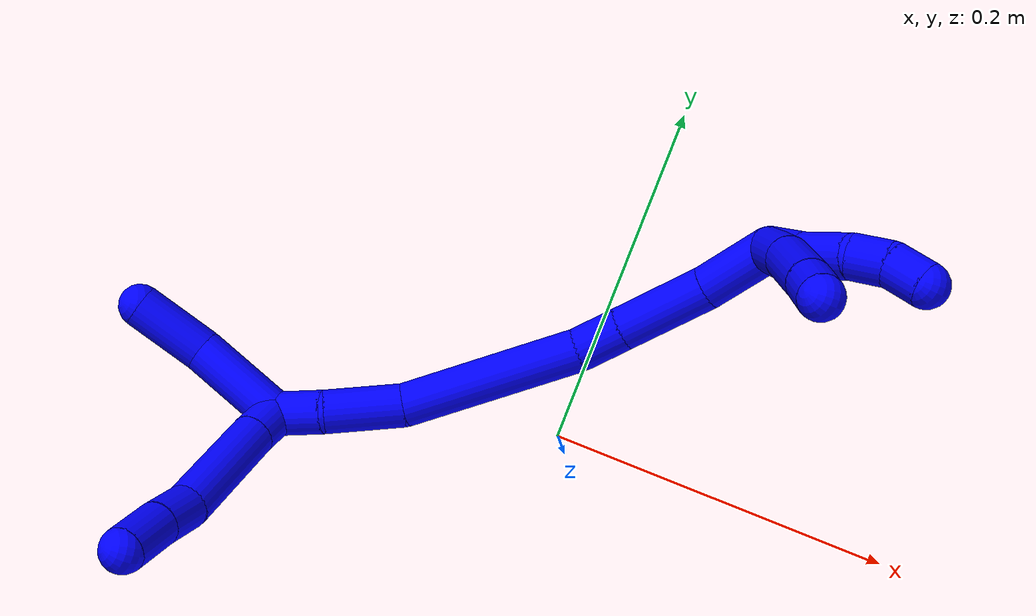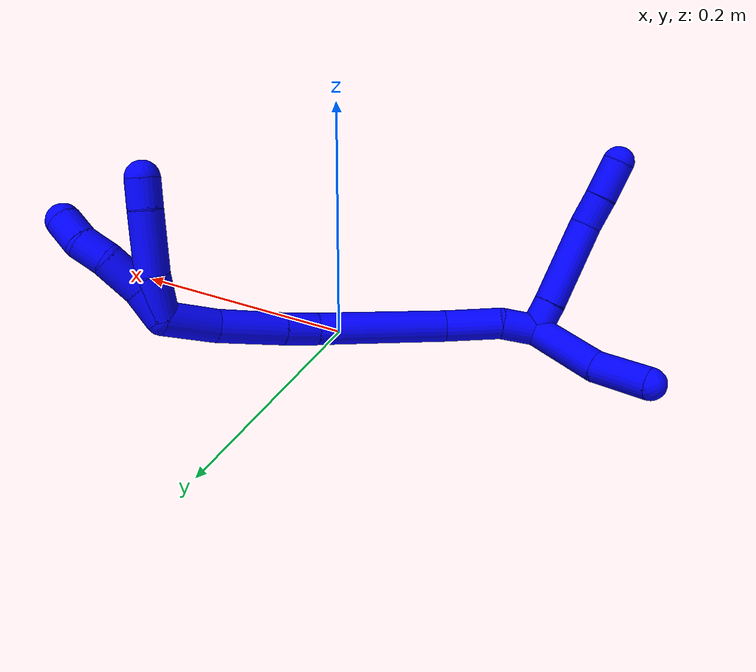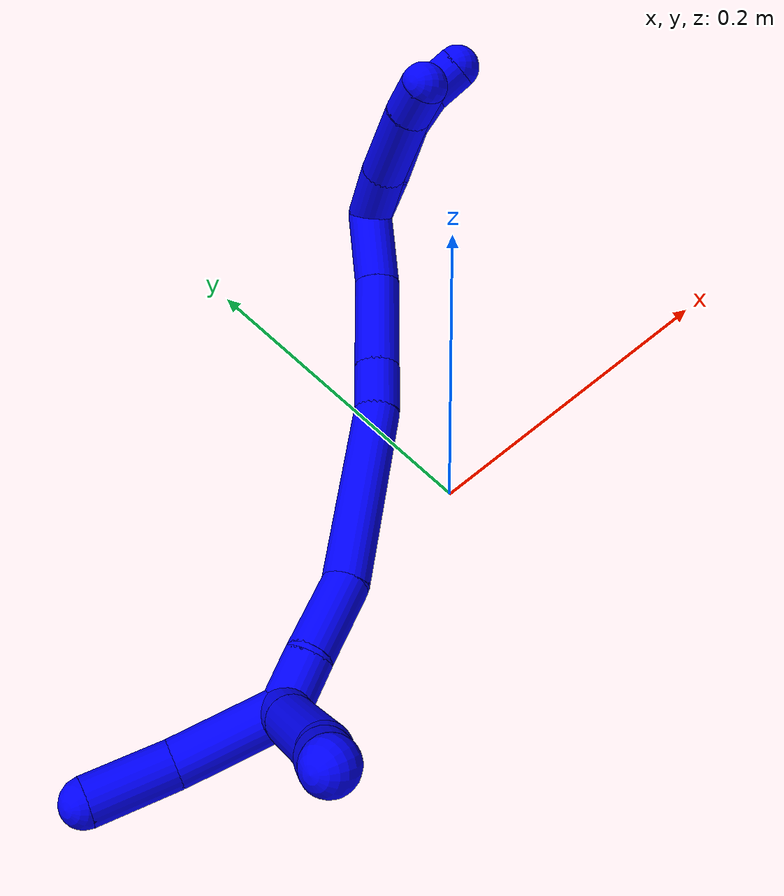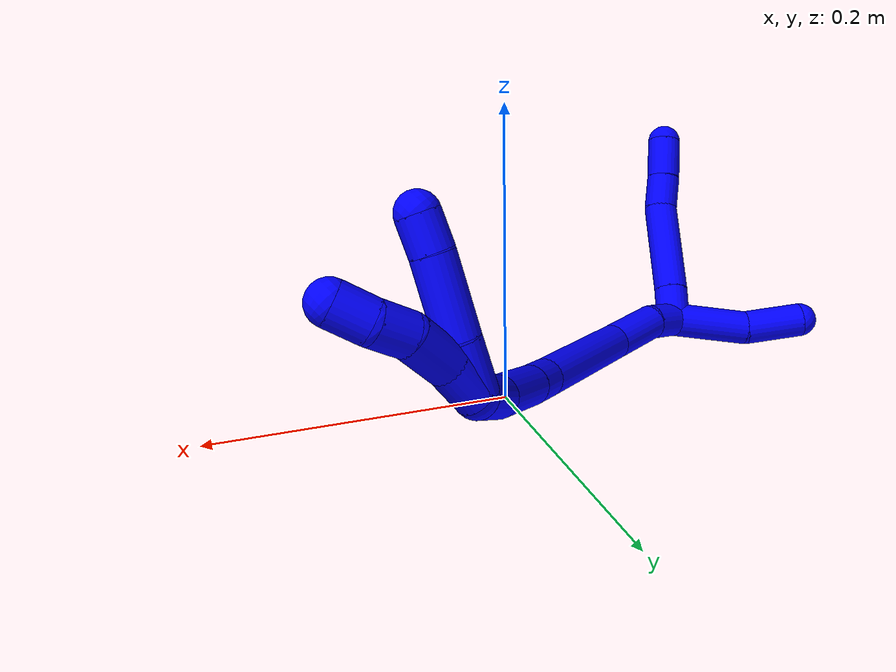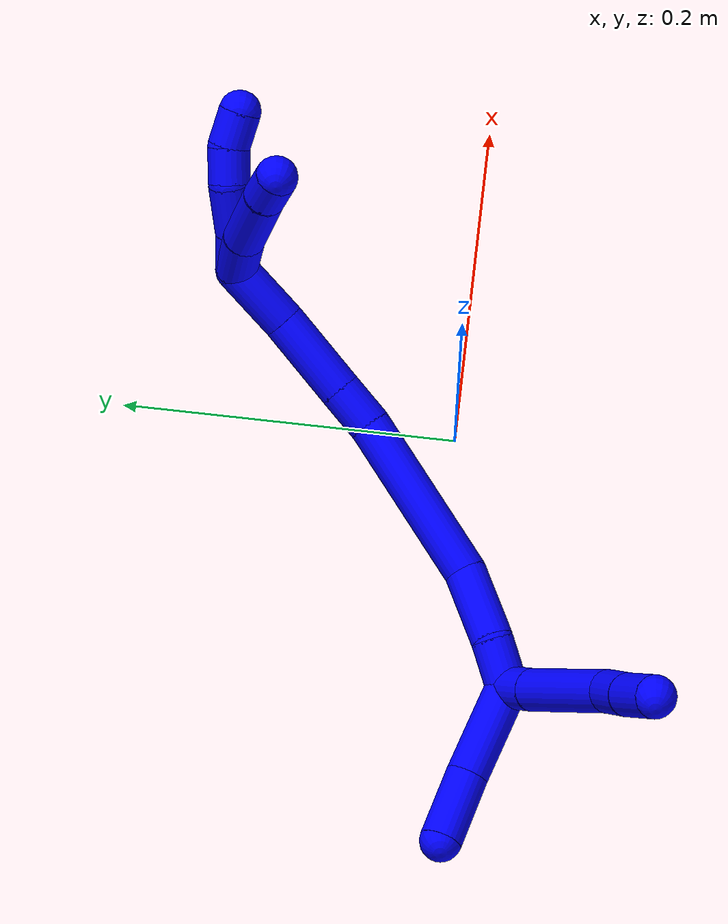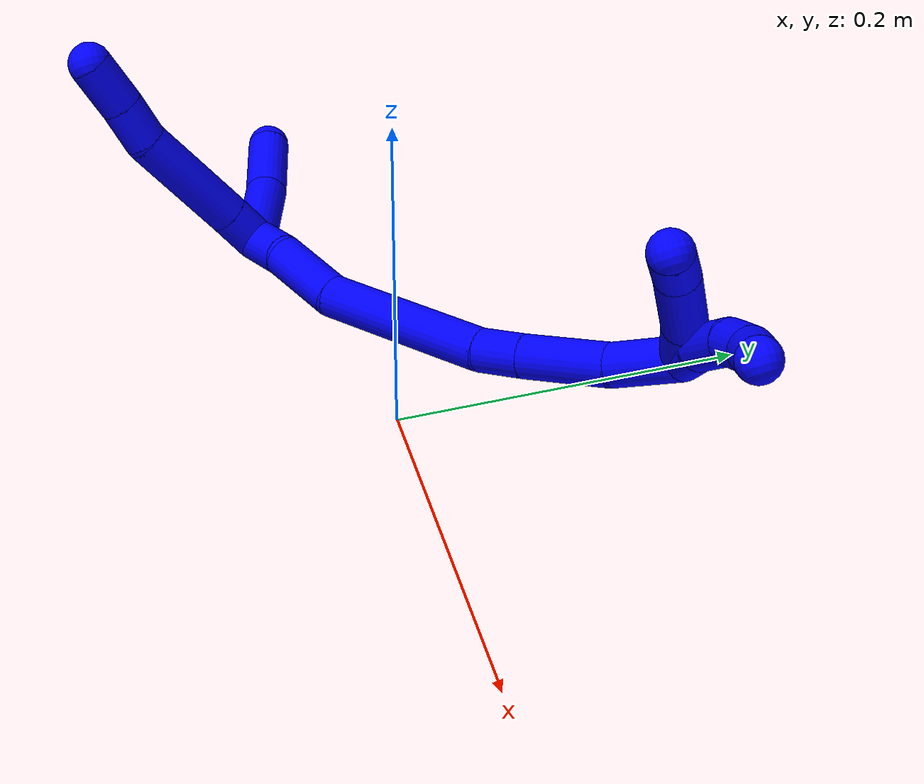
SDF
<sdf version="1.7">
 <world name="default">
  <model name="photoneo_s_sensor">
   <static>1</static>
   <pose>0 0 2 1.57079 1.57079 3.14159</pose>
   <link name="link">
    <inertial><mass>0.1</mass></inertial>
    <sensor name="sensor" type="depth">
     <update_rate>30</update_rate>
     <camera>
      <horizontal_fov>1.22</horizontal_fov>
      <image><width>1920</width><height>1200</height><format>B8G8R8</format></image>
      <clip><near>0.1</near><far>4</far></clip>
      <depth_camera><output>points</output></depth_camera>
     </camera>
     <plugin name="camera_plugin" filename="libgazebo_ros_depth_camera.so">
      <baseline>0.2</baseline>
      <alwaysOn>1</alwaysOn>
      <updateRate>0.0</updateRate>
      <cameraName>camera_ir</cameraName>
      <imageTopicName>/camera/color/image_raw</imageTopicName>
      <cameraInfoTopicName>/camera/color/camera_info</cameraInfoTopicName>
      <depthImageTopicName>/camera/depth/image_raw</depthImageTopicName>
      <depthImageCameraInfoTopicName>/camera/depth/camera_info</depthImageCameraInfoTopicName>
      <pointCloudTopicName>/camera/depth/points</pointCloudTopicName>
      <frameName>fr_optical</frameName>
      <pointCloudCutoff>0.1</pointCloudCutoff>
      <pointCloudCutoffMax>2.0</pointCloudCutoffMax>
      <distortionK1>0</distortionK1>
      <distortionK2>0</distortionK2>
      <distortionK3>0</distortionK3>
      <distortionT1>0</distortionT1>
      <distortionT2>0</distortionT2>
      <CxPrime>0</CxPrime>
      <Cx>0</Cx>
      <Cy>0</Cy>
      <focalLength>0</focalLength>
      <hackBaseline>0</hackBaseline>
     </plugin>
    </sensor>
   </link>
  </model>
  <model name="bin">
   <static>1</static>
   <link name="bottom">
    <collision name="collision-bottom">
     <pose>0 0 -0.01 0 -0 0</pose>
     <geometry><box><size>0.8 0.6 0.02</size></box></geometry>
     <surface>
      <friction><ode><mu>100</mu><mu2>100</mu2></ode></friction>
      <contact><collide_bitmask>65535</collide_bitmask></contact>
     </surface>
    </collision>
   </link>
   <link name="west_wall">
    <collision name="collision-west_wall">
     <pose>-0.41 0 0.1 0 -0 0</pose>
     <geometry><box><size>0.02 0.6 0.2</size></box></geometry>
     <surface>
      <friction><ode><mu>100</mu><mu2>100</mu2></ode></friction>
      <contact><collide_bitmask>65535</collide_bitmask></contact>
     </surface>
    </collision>
   </link>
   <link name="east_wall">
    <collision name="collision-east_wall">
     <pose>0.41 0 0.1 0 -0 0</pose>
     <geometry><box><size>0.02 0.6 0.2</size></box></geometry>
     <surface>
      <friction><ode><mu>100</mu><mu2>100</mu2></ode></friction>
      <contact><collide_bitmask>65535</collide_bitmask></contact>
     </surface>
    </collision>
   </link>
   <link name="south_wall">
    <collision name="collision-south_wall">
     <pose>0 -0.31 0.1 0 -0 0</pose>
     <geometry><box><size>0.8 0.02 0.2</size></box></geometry>
     <surface>
      <friction><ode><mu>100</mu><mu2>100</mu2></ode></friction>
      <contact><collide_bitmask>65535</collide_bitmask></contact>
     </surface>
    </collision>
   </link>
   <link name="north_wall">
    <collision name="collision-north_wall">
     <pose>0 0.31 0.1 0 -0 0</pose>
     <geometry><box><size>0.8 0.02 0.2</size></box></geometry>
     <surface>
      <friction><ode><mu>100</mu><mu2>100</mu2></ode></friction>
      <contact><collide_bitmask>65535</collide_bitmask></contact>
     </surface>
    </collision>
   </link>
  </model>
  <model name="1">
   <static>0</static>
   <link name="1">
    <collision name="collision-cylinder-e_1_2_8">
     <pose>0.007135 -0.005083 0.008221 0.553734 0.635879 0.186497</pose>
     <geometry><cylinder><radius>0.0125</radius><length>0.024027</length></cylinder></geometry>
     <surface>
      <friction><ode><mu>1.16</mu><mu2>1.16</mu2><slip1>0</slip1><slip2>0</slip2></ode></friction>
      <contact><ode><kp>1e+06</kp><kd>1</kd><max_vel>0</max_vel><min_depth>0.001</min_depth></ode></contact>
     </surface>
    </collision>
    <visual name="visual-cylinder-e_1_2_8">
     <pose>0.007135 -0.005083 0.008221 0.553734 0.635879 0.186497</pose>
     <geometry><cylinder><radius>0.0125</radius><length>0.024027</length></cylinder></geometry>
     <material><ambient>0 0 1 1</ambient></material>
    </visual>
    <collision name="collision-cylinder-e_2_8_9">
     <pose>0.036348 -0.024799 0.038936 0.576765 0.688472 0.211909</pose>
     <geometry><cylinder><radius>0.0125</radius><length>0.069501</length></cylinder></geometry>
     <surface>
      <friction><ode><mu>1.16</mu><mu2>1.16</mu2><slip1>0</slip1><slip2>0</slip2></ode></friction>
      <contact><ode><kp>1e+06</kp><kd>1</kd><max_vel>0</max_vel><min_depth>0.001</min_depth></ode></contact>
     </surface>
    </collision>
    <visual name="visual-cylinder-e_2_8_9">
     <pose>0.036348 -0.024799 0.038936 0.576765 0.688472 0.211909</pose>
     <geometry><cylinder><radius>0.0125</radius><length>0.069501</length></cylinder></geometry>
     <material><ambient>0 0 1 1</ambient></material>
    </visual>
    <collision name="collision-cylinder-e_3_9_10">
     <pose>0.065924 -0.042315 0.071468 0.279586 0.622574 0.090485</pose>
     <geometry><cylinder><radius>0.0125</radius><length>0.025711</length></cylinder></geometry>
     <surface>
      <friction><ode><mu>1.16</mu><mu2>1.16</mu2><slip1>0</slip1><slip2>0</slip2></ode></friction>
      <contact><ode><kp>1e+06</kp><kd>1</kd><max_vel>0</max_vel><min_depth>0.001</min_depth></ode></contact>
     </surface>
    </collision>
    <visual name="visual-cylinder-e_3_9_10">
     <pose>0.065924 -0.042315 0.071468 0.279586 0.622574 0.090485</pose>
     <geometry><cylinder><radius>0.0125</radius><length>0.025711</length></cylinder></geometry>
     <material><ambient>0 0 1 1</ambient></material>
    </visual>
    <collision name="collision-cylinder-e_4_10_6">
     <pose>0.08294 -0.049301 0.092868 0.346631 0.667394 0.121232</pose>
     <geometry><cylinder><radius>0.0125</radius><length>0.030761</length></cylinder></geometry>
     <surface>
      <friction><ode><mu>1.16</mu><mu2>1.16</mu2><slip1>0</slip1><slip2>0</slip2></ode></friction>
      <contact><ode><kp>1e+06</kp><kd>1</kd><max_vel>0</max_vel><min_depth>0.001</min_depth></ode></contact>
     </surface>
    </collision>
    <visual name="visual-cylinder-e_4_10_6">
     <pose>0.08294 -0.049301 0.092868 0.346631 0.667394 0.121232</pose>
     <geometry><cylinder><radius>0.0125</radius><length>0.030761</length></cylinder></geometry>
     <material><ambient>0 0 1 1</ambient></material>
    </visual>
    <collision name="collision-cylinder-e_1_2_11">
     <pose>-0.021443 0.004589 0.017814 -0.252116 -0.861741 0.116378</pose>
     <geometry><cylinder><radius>0.0125</radius><length>0.056505</length></cylinder></geometry>
     <surface>
      <friction><ode><mu>1.16</mu><mu2>1.16</mu2><slip1>0</slip1><slip2>0</slip2></ode></friction>
      <contact><ode><kp>1e+06</kp><kd>1</kd><max_vel>0</max_vel><min_depth>0.001</min_depth></ode></contact>
     </surface>
    </collision>
    <visual name="visual-cylinder-e_1_2_11">
     <pose>-0.021443 0.004589 0.017814 -0.252116 -0.861741 0.116378</pose>
     <geometry><cylinder><radius>0.0125</radius><length>0.056505</length></cylinder></geometry>
     <material><ambient>0 0 1 1</ambient></material>
    </visual>
    <collision name="collision-cylinder-e_2_11_5">
     <pose>-0.055243 0.012792 0.053156 -0.203359 -0.604288 0.063582</pose>
     <geometry><cylinder><radius>0.0125</radius><length>0.043495</length></cylinder></geometry>
     <surface>
      <friction><ode><mu>1.16</mu><mu2>1.16</mu2><slip1>0</slip1><slip2>0</slip2></ode></friction>
      <contact><ode><kp>1e+06</kp><kd>1</kd><max_vel>0</max_vel><min_depth>0.001</min_depth></ode></contact>
     </surface>
    </collision>
    <visual name="visual-cylinder-e_2_11_5">
     <pose>-0.055243 0.012792 0.053156 -0.203359 -0.604288 0.063582</pose>
     <geometry><cylinder><radius>0.0125</radius><length>0.043495</length></cylinder></geometry>
     <material><ambient>0 0 1 1</ambient></material>
    </visual>
    <collision name="collision-cylinder-e_1_2_12">
     <pose>0.008362 0.007542 -0.008816 -2.43394 0.624501 -1.43647</pose>
     <geometry><cylinder><radius>0.0125</radius><length>0.028603</length></cylinder></geometry>
     <surface>
      <friction><ode><mu>1.16</mu><mu2>1.16</mu2><slip1>0</slip1><slip2>0</slip2></ode></friction>
      <contact><ode><kp>1e+06</kp><kd>1</kd><max_vel>0</max_vel><min_depth>0.001</min_depth></ode></contact>
     </surface>
    </collision>
    <visual name="visual-cylinder-e_1_2_12">
     <pose>0.008362 0.007542 -0.008816 -2.43394 0.624501 -1.43647</pose>
     <geometry><cylinder><radius>0.0125</radius><length>0.028603</length></cylinder></geometry>
     <material><ambient>0 0 1 1</ambient></material>
    </visual>
    <collision name="collision-cylinder-e_2_12_13">
     <pose>0.02546 0.026626 -0.035086 -2.5573 0.395491 -1.17538</pose>
     <geometry><cylinder><radius>0.0125</radius><length>0.04535</length></cylinder></geometry>
     <surface>
      <friction><ode><mu>1.16</mu><mu2>1.16</mu2><slip1>0</slip1><slip2>0</slip2></ode></friction>
      <contact><ode><kp>1e+06</kp><kd>1</kd><max_vel>0</max_vel><min_depth>0.001</min_depth></ode></contact>
     </surface>
    </collision>
    <visual name="visual-cylinder-e_2_12_13">
     <pose>0.02546 0.026626 -0.035086 -2.5573 0.395491 -1.17538</pose>
     <geometry><cylinder><radius>0.0125</radius><length>0.04535</length></cylinder></geometry>
     <material><ambient>0 0 1 1</ambient></material>
    </visual>
    <collision name="collision-cylinder-e_3_13_14">
     <pose>0.054542 0.075428 -0.082638 -2.25027 0.401686 -0.805726</pose>
     <geometry><cylinder><radius>0.0125</radius><length>0.104081</length></cylinder></geometry>
     <surface>
      <friction><ode><mu>1.16</mu><mu2>1.16</mu2><slip1>0</slip1><slip2>0</slip2></ode></friction>
      <contact><ode><kp>1e+06</kp><kd>1</kd><max_vel>0</max_vel><min_depth>0.001</min_depth></ode></contact>
     </surface>
    </collision>
    <visual name="visual-cylinder-e_3_13_14">
     <pose>0.054542 0.075428 -0.082638 -2.25027 0.401686 -0.805726</pose>
     <geometry><cylinder><radius>0.0125</radius><length>0.104081</length></cylinder></geometry>
     <material><ambient>0 0 1 1</ambient></material>
    </visual>
    <collision name="collision-cylinder-e_4_14_15">
     <pose>0.080158 0.123954 -0.118562 -2.048 0.393789 -0.633365</pose>
     <geometry><cylinder><radius>0.0125</radius><length>0.027468</length></cylinder></geometry>
     <surface>
      <friction><ode><mu>1.16</mu><mu2>1.16</mu2><slip1>0</slip1><slip2>0</slip2></ode></friction>
      <contact><ode><kp>1e+06</kp><kd>1</kd><max_vel>0</max_vel><min_depth>0.001</min_depth></ode></contact>
     </surface>
    </collision>
    <visual name="visual-cylinder-e_4_14_15">
     <pose>0.080158 0.123954 -0.118562 -2.048 0.393789 -0.633365</pose>
     <geometry><cylinder><radius>0.0125</radius><length>0.027468</length></cylinder></geometry>
     <material><ambient>0 0 1 1</ambient></material>
    </visual>
    <collision name="collision-cylinder-e_5_15_16">
     <pose>0.096346 0.156903 -0.134661 -2.01329 0.427052 -0.660283</pose>
     <geometry><cylinder><radius>0.0125</radius><length>0.052724</length></cylinder></geometry>
     <surface>
      <friction><ode><mu>1.16</mu><mu2>1.16</mu2><slip1>0</slip1><slip2>0</slip2></ode></friction>
      <contact><ode><kp>1e+06</kp><kd>1</kd><max_vel>0</max_vel><min_depth>0.001</min_depth></ode></contact>
     </surface>
    </collision>
    <visual name="visual-cylinder-e_5_15_16">
     <pose>0.096346 0.156903 -0.134661 -2.01329 0.427052 -0.660283</pose>
     <geometry><cylinder><radius>0.0125</radius><length>0.052724</length></cylinder></geometry>
     <material><ambient>0 0 1 1</ambient></material>
    </visual>
    <collision name="collision-cylinder-e_6_16_1">
     <pose>0.116676 0.196656 -0.14954 -1.82028 0.4674 -0.594469</pose>
     <geometry><cylinder><radius>0.0125</radius><length>0.041775</length></cylinder></geometry>
     <surface>
      <friction><ode><mu>1.16</mu><mu2>1.16</mu2><slip1>0</slip1><slip2>0</slip2></ode></friction>
      <contact><ode><kp>1e+06</kp><kd>1</kd><max_vel>0</max_vel><min_depth>0.001</min_depth></ode></contact>
     </surface>
    </collision>
    <visual name="visual-cylinder-e_6_16_1">
     <pose>0.116676 0.196656 -0.14954 -1.82028 0.4674 -0.594469</pose>
     <geometry><cylinder><radius>0.0125</radius><length>0.041775</length></cylinder></geometry>
     <material><ambient>0 0 1 1</ambient></material>
    </visual>
    <collision name="collision-cylinder-e_1_1_17">
     <pose>0.138339 0.218651 -0.153961 -1.52425 1.26049 -1.21649</pose>
     <geometry><cylinder><radius>0.0125</radius><length>0.025732</length></cylinder></geometry>
     <surface>
      <friction><ode><mu>1.16</mu><mu2>1.16</mu2><slip1>0</slip1><slip2>0</slip2></ode></friction>
      <contact><ode><kp>1e+06</kp><kd>1</kd><max_vel>0</max_vel><min_depth>0.001</min_depth></ode></contact>
     </surface>
    </collision>
    <visual name="visual-cylinder-e_1_1_17">
     <pose>0.138339 0.218651 -0.153961 -1.52425 1.26049 -1.21649</pose>
     <geometry><cylinder><radius>0.0125</radius><length>0.025732</length></cylinder></geometry>
     <material><ambient>0 0 1 1</ambient></material>
    </visual>
    <collision name="collision-cylinder-e_2_17_18">
     <pose>0.164269 0.22928 -0.155704 -1.85044 1.09918 -1.36547</pose>
     <geometry><cylinder><radius>0.0125</radius><length>0.030709</length></cylinder></geometry>
     <surface>
      <friction><ode><mu>1.16</mu><mu2>1.16</mu2><slip1>0</slip1><slip2>0</slip2></ode></friction>
      <contact><ode><kp>1e+06</kp><kd>1</kd><max_vel>0</max_vel><min_depth>0.001</min_depth></ode></contact>
     </surface>
    </collision>
    <visual name="visual-cylinder-e_2_17_18">
     <pose>0.164269 0.22928 -0.155704 -1.85044 1.09918 -1.36547</pose>
     <geometry><cylinder><radius>0.0125</radius><length>0.030709</length></cylinder></geometry>
     <material><ambient>0 0 1 1</ambient></material>
    </visual>
    <collision name="collision-cylinder-e_3_18_19">
     <pose>0.187248 0.23943 -0.161995 -2.47355 1.03189 -2.04345</pose>
     <geometry><cylinder><radius>0.0125</radius><length>0.021674</length></cylinder></geometry>
     <surface>
      <friction><ode><mu>1.16</mu><mu2>1.16</mu2><slip1>0</slip1><slip2>0</slip2></ode></friction>
      <contact><ode><kp>1e+06</kp><kd>1</kd><max_vel>0</max_vel><min_depth>0.001</min_depth></ode></contact>
     </surface>
    </collision>
    <visual name="visual-cylinder-e_3_18_19">
     <pose>0.187248 0.23943 -0.161995 -2.47355 1.03189 -2.04345</pose>
     <geometry><cylinder><radius>0.0125</radius><length>0.021674</length></cylinder></geometry>
     <material><ambient>0 0 1 1</ambient></material>
    </visual>
    <collision name="collision-cylinder-e_4_19_4">
     <pose>0.206811 0.242945 -0.170159 -3.1233 1.2163 -3.11531</pose>
     <geometry><cylinder><radius>0.0125</radius><length>0.021884</length></cylinder></geometry>
     <surface>
      <friction><ode><mu>1.16</mu><mu2>1.16</mu2><slip1>0</slip1><slip2>0</slip2></ode></friction>
      <contact><ode><kp>1e+06</kp><kd>1</kd><max_vel>0</max_vel><min_depth>0.001</min_depth></ode></contact>
     </surface>
    </collision>
    <visual name="visual-cylinder-e_4_19_4">
     <pose>0.206811 0.242945 -0.170159 -3.1233 1.2163 -3.11531</pose>
     <geometry><cylinder><radius>0.0125</radius><length>0.021884</length></cylinder></geometry>
     <material><ambient>0 0 1 1</ambient></material>
    </visual>
    <collision name="collision-cylinder-e_1_1_20">
     <pose>0.140732 0.21675 -0.147534 -0.297138 1.1298 -0.189158</pose>
     <geometry><cylinder><radius>0.0125</radius><length>0.032388</length></cylinder></geometry>
     <surface>
      <friction><ode><mu>1.16</mu><mu2>1.16</mu2><slip1>0</slip1><slip2>0</slip2></ode></friction>
      <contact><ode><kp>1e+06</kp><kd>1</kd><max_vel>0</max_vel><min_depth>0.001</min_depth></ode></contact>
     </surface>
    </collision>
    <visual name="visual-cylinder-e_1_1_20">
     <pose>0.140732 0.21675 -0.147534 -0.297138 1.1298 -0.189158</pose>
     <geometry><cylinder><radius>0.0125</radius><length>0.032388</length></cylinder></geometry>
     <material><ambient>0 0 1 1</ambient></material>
    </visual>
    <collision name="collision-cylinder-e_2_20_21">
     <pose>0.176013 0.218911 -0.130691 -0.013401 1.11038 -0.008312</pose>
     <geometry><cylinder><radius>0.0125</radius><length>0.046072</length></cylinder></geometry>
     <surface>
      <friction><ode><mu>1.16</mu><mu2>1.16</mu2><slip1>0</slip1><slip2>0</slip2></ode></friction>
      <contact><ode><kp>1e+06</kp><kd>1</kd><max_vel>0</max_vel><min_depth>0.001</min_depth></ode></contact>
     </surface>
    </collision>
    <visual name="visual-cylinder-e_2_20_21">
     <pose>0.176013 0.218911 -0.130691 -0.013401 1.11038 -0.008312</pose>
     <geometry><cylinder><radius>0.0125</radius><length>0.046072</length></cylinder></geometry>
     <material><ambient>0 0 1 1</ambient></material>
    </visual>
    <collision name="collision-cylinder-e_3_21_3">
     <pose>0.206527 0.218397 -0.116211 0.152204 1.16058 0.099892</pose>
     <geometry><cylinder><radius>0.0125</radius><length>0.02154</length></cylinder></geometry>
     <surface>
      <friction><ode><mu>1.16</mu><mu2>1.16</mu2><slip1>0</slip1><slip2>0</slip2></ode></friction>
      <contact><ode><kp>1e+06</kp><kd>1</kd><max_vel>0</max_vel><min_depth>0.001</min_depth></ode></contact>
     </surface>
    </collision>
    <visual name="visual-cylinder-e_3_21_3">
     <pose>0.206527 0.218397 -0.116211 0.152204 1.16058 0.099892</pose>
     <geometry><cylinder><radius>0.0125</radius><length>0.02154</length></cylinder></geometry>
     <material><ambient>0 0 1 1</ambient></material>
    </visual>
    <collision name="collision-sphere-3">
     <pose>0.216404 0.217746 -0.111965 0 -0 0</pose>
     <geometry><sphere><radius>0.0125</radius></sphere></geometry>
     <surface>
      <friction><ode><mu>1.16</mu><mu2>1.16</mu2><slip1>0</slip1><slip2>0</slip2></ode></friction>
      <contact><ode><kp>1e+06</kp><kd>1</kd><max_vel>0</max_vel><min_depth>0.001</min_depth></ode></contact>
     </surface>
    </collision>
    <visual name="visual-sphere-3">
     <pose>0.216404 0.217746 -0.111965 0 -0 0</pose>
     <geometry><sphere><radius>0.0125</radius></sphere></geometry>
     <material><ambient>0 0 1 1</ambient></material>
    </visual>
    <collision name="collision-sphere-21">
     <pose>0.196651 0.219048 -0.120456 0 -0 0</pose>
     <geometry><sphere><radius>0.0125</radius></sphere></geometry>
     <surface>
      <friction><ode><mu>1.16</mu><mu2>1.16</mu2><slip1>0</slip1><slip2>0</slip2></ode></friction>
      <contact><ode><kp>1e+06</kp><kd>1</kd><max_vel>0</max_vel><min_depth>0.001</min_depth></ode></contact>
     </surface>
    </collision>
    <visual name="visual-sphere-21">
     <pose>0.196651 0.219048 -0.120456 0 -0 0</pose>
     <geometry><sphere><radius>0.0125</radius></sphere></geometry>
     <material><ambient>0 0 1 1</ambient></material>
    </visual>
    <collision name="collision-sphere-20">
     <pose>0.155376 0.218774 -0.140925 0 -0 0</pose>
     <geometry><sphere><radius>0.0125</radius></sphere></geometry>
     <surface>
      <friction><ode><mu>1.16</mu><mu2>1.16</mu2><slip1>0</slip1><slip2>0</slip2></ode></friction>
      <contact><ode><kp>1e+06</kp><kd>1</kd><max_vel>0</max_vel><min_depth>0.001</min_depth></ode></contact>
     </surface>
    </collision>
    <visual name="visual-sphere-20">
     <pose>0.155376 0.218774 -0.140925 0 -0 0</pose>
     <geometry><sphere><radius>0.0125</radius></sphere></geometry>
     <material><ambient>0 0 1 1</ambient></material>
    </visual>
    <collision name="collision-sphere-4">
     <pose>0.217073 0.243014 -0.173956 0 -0 0</pose>
     <geometry><sphere><radius>0.0125</radius></sphere></geometry>
     <surface>
      <friction><ode><mu>1.16</mu><mu2>1.16</mu2><slip1>0</slip1><slip2>0</slip2></ode></friction>
      <contact><ode><kp>1e+06</kp><kd>1</kd><max_vel>0</max_vel><min_depth>0.001</min_depth></ode></contact>
     </surface>
    </collision>
    <visual name="visual-sphere-4">
     <pose>0.217073 0.243014 -0.173956 0 -0 0</pose>
     <geometry><sphere><radius>0.0125</radius></sphere></geometry>
     <material><ambient>0 0 1 1</ambient></material>
    </visual>
    <collision name="collision-sphere-11">
     <pose>-0.042886 0.009178 0.035629 0 -0 0</pose>
     <geometry><sphere><radius>0.0125</radius></sphere></geometry>
     <surface>
      <friction><ode><mu>1.16</mu><mu2>1.16</mu2><slip1>0</slip1><slip2>0</slip2></ode></friction>
      <contact><ode><kp>1e+06</kp><kd>1</kd><max_vel>0</max_vel><min_depth>0.001</min_depth></ode></contact>
     </surface>
    </collision>
    <visual name="visual-sphere-11">
     <pose>-0.042886 0.009178 0.035629 0 -0 0</pose>
     <geometry><sphere><radius>0.0125</radius></sphere></geometry>
     <material><ambient>0 0 1 1</ambient></material>
    </visual>
    <collision name="collision-sphere-6">
     <pose>0.092459 -0.053405 0.10423 0 -0 0</pose>
     <geometry><sphere><radius>0.0125</radius></sphere></geometry>
     <surface>
      <friction><ode><mu>1.16</mu><mu2>1.16</mu2><slip1>0</slip1><slip2>0</slip2></ode></friction>
      <contact><ode><kp>1e+06</kp><kd>1</kd><max_vel>0</max_vel><min_depth>0.001</min_depth></ode></contact>
     </surface>
    </collision>
    <visual name="visual-sphere-6">
     <pose>0.092459 -0.053405 0.10423 0 -0 0</pose>
     <geometry><sphere><radius>0.0125</radius></sphere></geometry>
     <material><ambient>0 0 1 1</ambient></material>
    </visual>
    <collision name="collision-sphere-10">
     <pose>0.07342 -0.045197 0.081506 0 -0 0</pose>
     <geometry><sphere><radius>0.0125</radius></sphere></geometry>
     <surface>
      <friction><ode><mu>1.16</mu><mu2>1.16</mu2><slip1>0</slip1><slip2>0</slip2></ode></friction>
      <contact><ode><kp>1e+06</kp><kd>1</kd><max_vel>0</max_vel><min_depth>0.001</min_depth></ode></contact>
     </surface>
    </collision>
    <visual name="visual-sphere-10">
     <pose>0.07342 -0.045197 0.081506 0 -0 0</pose>
     <geometry><sphere><radius>0.0125</radius></sphere></geometry>
     <material><ambient>0 0 1 1</ambient></material>
    </visual>
    <collision name="collision-sphere-9">
     <pose>0.058428 -0.039433 0.06143 0 -0 0</pose>
     <geometry><sphere><radius>0.0125</radius></sphere></geometry>
     <surface>
      <friction><ode><mu>1.16</mu><mu2>1.16</mu2><slip1>0</slip1><slip2>0</slip2></ode></friction>
      <contact><ode><kp>1e+06</kp><kd>1</kd><max_vel>0</max_vel><min_depth>0.001</min_depth></ode></contact>
     </surface>
    </collision>
    <visual name="visual-sphere-9">
     <pose>0.058428 -0.039433 0.06143 0 -0 0</pose>
     <geometry><sphere><radius>0.0125</radius></sphere></geometry>
     <material><ambient>0 0 1 1</ambient></material>
    </visual>
    <collision name="collision-sphere-2">
     <geometry><sphere><radius>0.0125</radius></sphere></geometry>
     <surface>
      <friction><ode><mu>1.16</mu><mu2>1.16</mu2><slip1>0</slip1><slip2>0</slip2></ode></friction>
      <contact><ode><kp>1e+06</kp><kd>1</kd><max_vel>0</max_vel><min_depth>0.001</min_depth></ode></contact>
     </surface>
    </collision>
    <visual name="visual-sphere-2">
     <geometry><sphere><radius>0.0125</radius></sphere></geometry>
     <material><ambient>0 0 1 1</ambient></material>
    </visual>
    <collision name="collision-sphere-19">
     <pose>0.19655 0.242875 -0.166361 0 -0 0</pose>
     <geometry><sphere><radius>0.0125</radius></sphere></geometry>
     <surface>
      <friction><ode><mu>1.16</mu><mu2>1.16</mu2><slip1>0</slip1><slip2>0</slip2></ode></friction>
      <contact><ode><kp>1e+06</kp><kd>1</kd><max_vel>0</max_vel><min_depth>0.001</min_depth></ode></contact>
     </surface>
    </collision>
    <visual name="visual-sphere-19">
     <pose>0.19655 0.242875 -0.166361 0 -0 0</pose>
     <geometry><sphere><radius>0.0125</radius></sphere></geometry>
     <material><ambient>0 0 1 1</ambient></material>
    </visual>
    <collision name="collision-sphere-8">
     <pose>0.014269 -0.010165 0.016442 0 -0 0</pose>
     <geometry><sphere><radius>0.0125</radius></sphere></geometry>
     <surface>
      <friction><ode><mu>1.16</mu><mu2>1.16</mu2><slip1>0</slip1><slip2>0</slip2></ode></friction>
      <contact><ode><kp>1e+06</kp><kd>1</kd><max_vel>0</max_vel><min_depth>0.001</min_depth></ode></contact>
     </surface>
    </collision>
    <visual name="visual-sphere-8">
     <pose>0.014269 -0.010165 0.016442 0 -0 0</pose>
     <geometry><sphere><radius>0.0125</radius></sphere></geometry>
     <material><ambient>0 0 1 1</ambient></material>
    </visual>
    <collision name="collision-sphere-5">
     <pose>-0.067599 0.016406 0.070683 0 -0 0</pose>
     <geometry><sphere><radius>0.0125</radius></sphere></geometry>
     <surface>
      <friction><ode><mu>1.16</mu><mu2>1.16</mu2><slip1>0</slip1><slip2>0</slip2></ode></friction>
      <contact><ode><kp>1e+06</kp><kd>1</kd><max_vel>0</max_vel><min_depth>0.001</min_depth></ode></contact>
     </surface>
    </collision>
    <visual name="visual-sphere-5">
     <pose>-0.067599 0.016406 0.070683 0 -0 0</pose>
     <geometry><sphere><radius>0.0125</radius></sphere></geometry>
     <material><ambient>0 0 1 1</ambient></material>
    </visual>
    <collision name="collision-sphere-12">
     <pose>0.016724 0.015084 -0.017633 0 -0 0</pose>
     <geometry><sphere><radius>0.0125</radius></sphere></geometry>
     <surface>
      <friction><ode><mu>1.16</mu><mu2>1.16</mu2><slip1>0</slip1><slip2>0</slip2></ode></friction>
      <contact><ode><kp>1e+06</kp><kd>1</kd><max_vel>0</max_vel><min_depth>0.001</min_depth></ode></contact>
     </surface>
    </collision>
    <visual name="visual-sphere-12">
     <pose>0.016724 0.015084 -0.017633 0 -0 0</pose>
     <geometry><sphere><radius>0.0125</radius></sphere></geometry>
     <material><ambient>0 0 1 1</ambient></material>
    </visual>
    <collision name="collision-sphere-13">
     <pose>0.034196 0.038168 -0.052539 0 -0 0</pose>
     <geometry><sphere><radius>0.0125</radius></sphere></geometry>
     <surface>
      <friction><ode><mu>1.16</mu><mu2>1.16</mu2><slip1>0</slip1><slip2>0</slip2></ode></friction>
      <contact><ode><kp>1e+06</kp><kd>1</kd><max_vel>0</max_vel><min_depth>0.001</min_depth></ode></contact>
     </surface>
    </collision>
    <visual name="visual-sphere-13">
     <pose>0.034196 0.038168 -0.052539 0 -0 0</pose>
     <geometry><sphere><radius>0.0125</radius></sphere></geometry>
     <material><ambient>0 0 1 1</ambient></material>
    </visual>
    <collision name="collision-sphere-14">
     <pose>0.074888 0.112688 -0.112737 0 -0 0</pose>
     <geometry><sphere><radius>0.0125</radius></sphere></geometry>
     <surface>
      <friction><ode><mu>1.16</mu><mu2>1.16</mu2><slip1>0</slip1><slip2>0</slip2></ode></friction>
      <contact><ode><kp>1e+06</kp><kd>1</kd><max_vel>0</max_vel><min_depth>0.001</min_depth></ode></contact>
     </surface>
    </collision>
    <visual name="visual-sphere-14">
     <pose>0.074888 0.112688 -0.112737 0 -0 0</pose>
     <geometry><sphere><radius>0.0125</radius></sphere></geometry>
     <material><ambient>0 0 1 1</ambient></material>
    </visual>
    <collision name="collision-sphere-15">
     <pose>0.085427 0.13522 -0.124387 0 -0 0</pose>
     <geometry><sphere><radius>0.0125</radius></sphere></geometry>
     <surface>
      <friction><ode><mu>1.16</mu><mu2>1.16</mu2><slip1>0</slip1><slip2>0</slip2></ode></friction>
      <contact><ode><kp>1e+06</kp><kd>1</kd><max_vel>0</max_vel><min_depth>0.001</min_depth></ode></contact>
     </surface>
    </collision>
    <visual name="visual-sphere-15">
     <pose>0.085427 0.13522 -0.124387 0 -0 0</pose>
     <geometry><sphere><radius>0.0125</radius></sphere></geometry>
     <material><ambient>0 0 1 1</ambient></material>
    </visual>
    <collision name="collision-sphere-16">
     <pose>0.107265 0.178587 -0.144936 0 -0 0</pose>
     <geometry><sphere><radius>0.0125</radius></sphere></geometry>
     <surface>
      <friction><ode><mu>1.16</mu><mu2>1.16</mu2><slip1>0</slip1><slip2>0</slip2></ode></friction>
      <contact><ode><kp>1e+06</kp><kd>1</kd><max_vel>0</max_vel><min_depth>0.001</min_depth></ode></contact>
     </surface>
    </collision>
    <visual name="visual-sphere-16">
     <pose>0.107265 0.178587 -0.144936 0 -0 0</pose>
     <geometry><sphere><radius>0.0125</radius></sphere></geometry>
     <material><ambient>0 0 1 1</ambient></material>
    </visual>
    <collision name="collision-sphere-1">
     <pose>0.126087 0.214726 -0.154144 0 -0 0</pose>
     <geometry><sphere><radius>0.0125</radius></sphere></geometry>
     <surface>
      <friction><ode><mu>1.16</mu><mu2>1.16</mu2><slip1>0</slip1><slip2>0</slip2></ode></friction>
      <contact><ode><kp>1e+06</kp><kd>1</kd><max_vel>0</max_vel><min_depth>0.001</min_depth></ode></contact>
     </surface>
    </collision>
    <visual name="visual-sphere-1">
     <pose>0.126087 0.214726 -0.154144 0 -0 0</pose>
     <geometry><sphere><radius>0.0125</radius></sphere></geometry>
     <material><ambient>0 0 1 1</ambient></material>
    </visual>
    <collision name="collision-sphere-18">
     <pose>0.177947 0.235985 -0.157629 0 -0 0</pose>
     <geometry><sphere><radius>0.0125</radius></sphere></geometry>
     <surface>
      <friction><ode><mu>1.16</mu><mu2>1.16</mu2><slip1>0</slip1><slip2>0</slip2></ode></friction>
      <contact><ode><kp>1e+06</kp><kd>1</kd><max_vel>0</max_vel><min_depth>0.001</min_depth></ode></contact>
     </surface>
    </collision>
    <visual name="visual-sphere-18">
     <pose>0.177947 0.235985 -0.157629 0 -0 0</pose>
     <geometry><sphere><radius>0.0125</radius></sphere></geometry>
     <material><ambient>0 0 1 1</ambient></material>
    </visual>
    <collision name="collision-sphere-17">
     <pose>0.15059 0.222575 -0.153778 0 -0 0</pose>
     <geometry><sphere><radius>0.0125</radius></sphere></geometry>
     <surface>
      <friction><ode><mu>1.16</mu><mu2>1.16</mu2><slip1>0</slip1><slip2>0</slip2></ode></friction>
      <contact><ode><kp>1e+06</kp><kd>1</kd><max_vel>0</max_vel><min_depth>0.001</min_depth></ode></contact>
     </surface>
    </collision>
    <visual name="visual-sphere-17">
     <pose>0.15059 0.222575 -0.153778 0 -0 0</pose>
     <geometry><sphere><radius>0.0125</radius></sphere></geometry>
     <material><ambient>0 0 1 1</ambient></material>
    </visual>
    <inertial>
     <pose>0.075814 0.094021 -0.06055 0 -0 0</pose>
     <mass>0.75</mass>
     <inertia><ixx>8e-05</ixx><ixy>0</ixy><ixz>0</ixz><iyy>-7e-06</iyy><iyz>0</iyz><izz>-0.00017</izz></inertia>
    </inertial>
   </link>
   <pose>-0.154092 -0.046555 0.020266 0.369511 -0.847114 -0.394528</pose>
  </model>
 </world>
</sdf>
